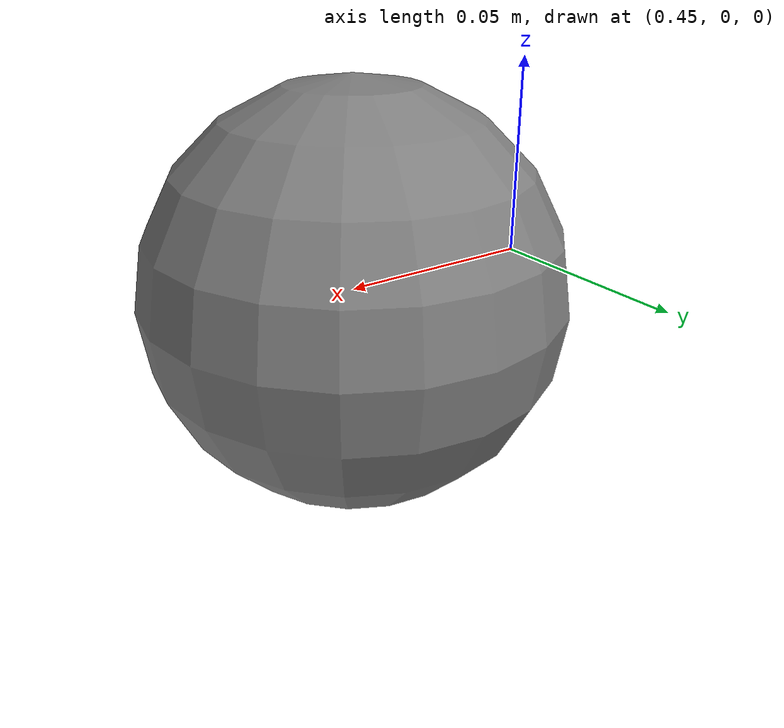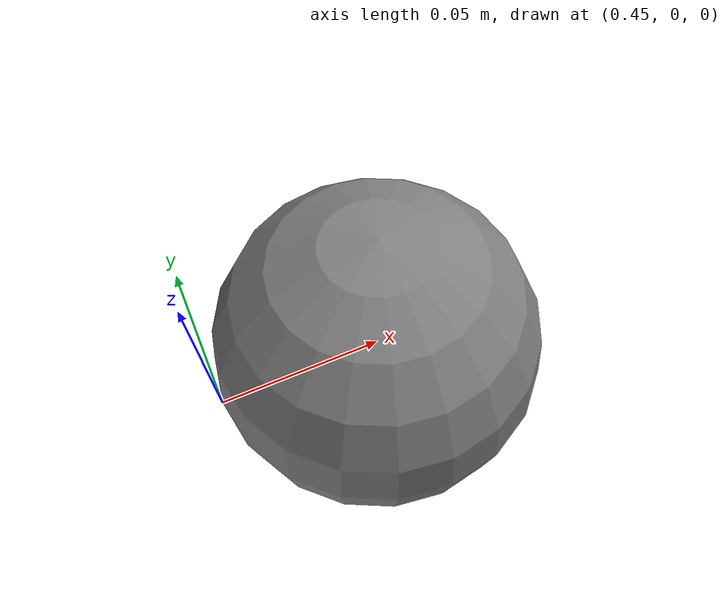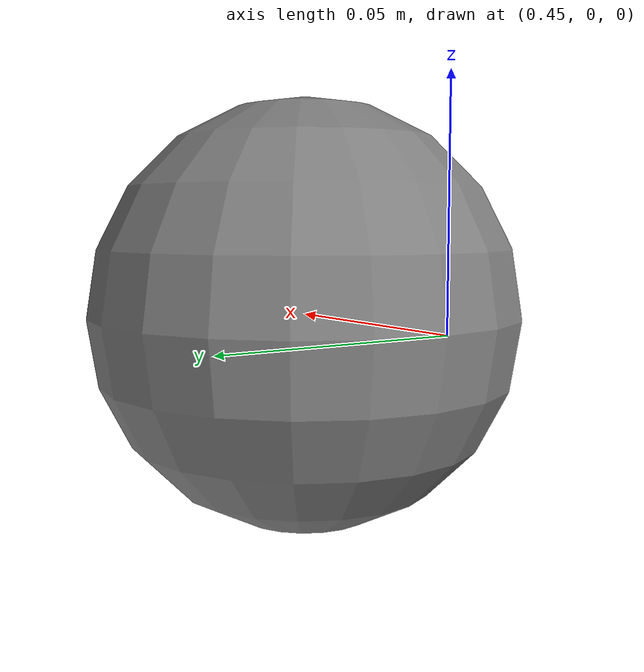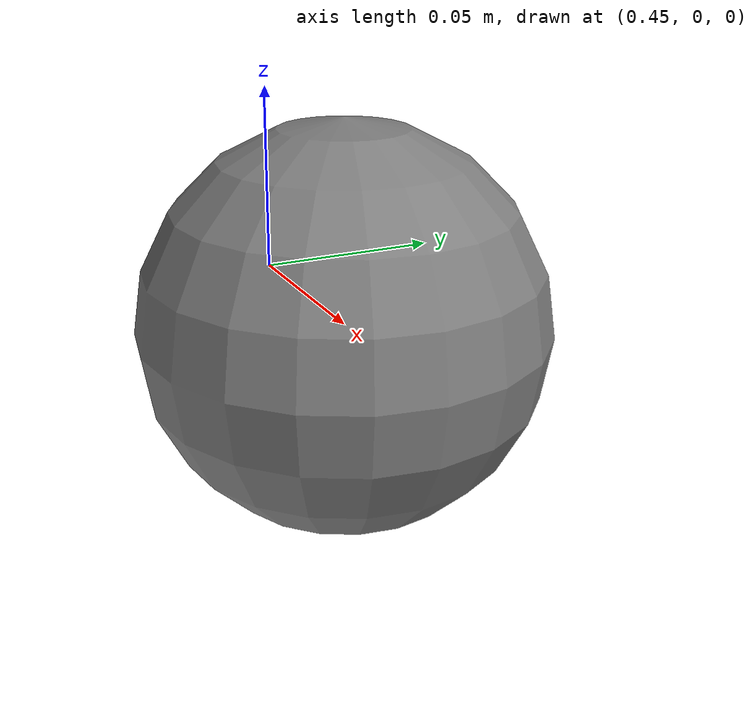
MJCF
<mujoco model="t19">
            <option gravity="0 0 0"/>
            <worldbody>
                <body name="b1" pos="0 0 0">
                    <joint name="j1" type="hinge" axis="0 0 1"/>
                    <geom name="g1" type="sphere" size="0.05" pos="0.5 0 0" mass="1"/>
                    <site name="s1" pos="0.5 0 0"/>
                </body>
            </worldbody>
            <sensor>
                <framelinvel name="flv_geom" objtype="geom" objname="g1"/>
                <framelinvel name="flv_site" site="s1"/>
            </sensor>
        </mujoco>
